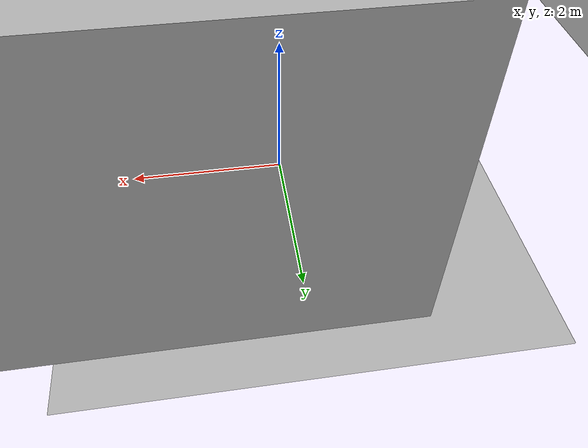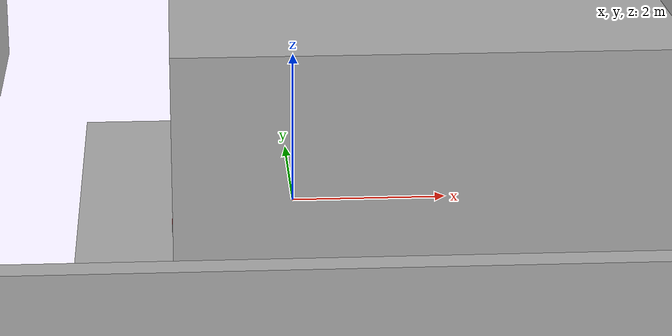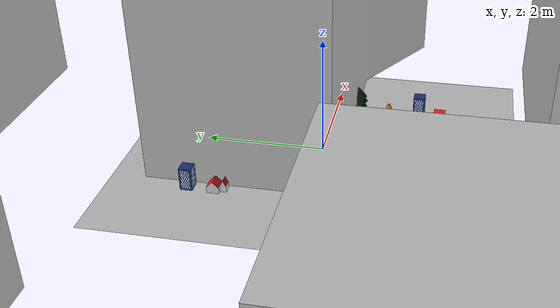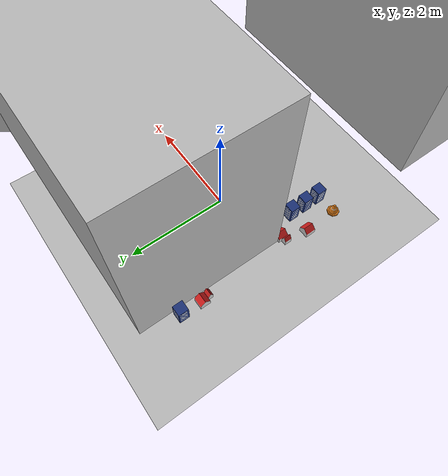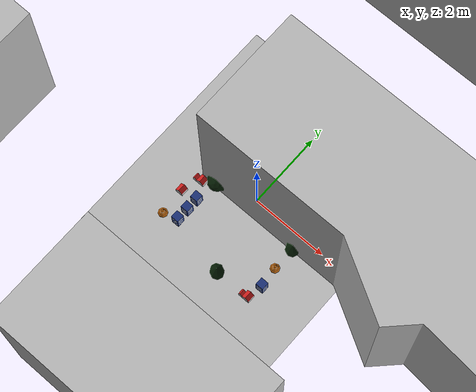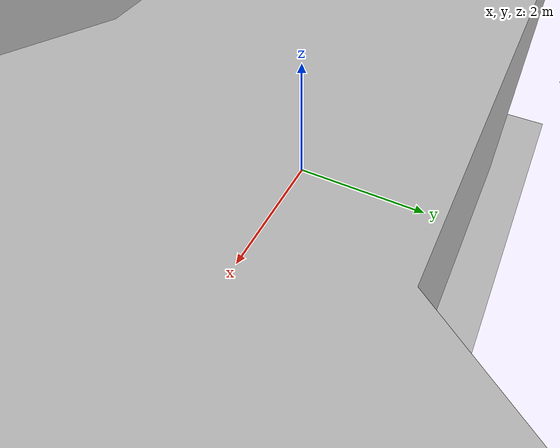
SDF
<?xml version="1.0"?>

<sdf version="1.6">
  <world name="yahboom_track_world">
    <physics name="1ms" type="ignored">
      <max_step_size>0.001</max_step_size>
      <real_time_factor>1.0</real_time_factor>
    </physics>

    <plugin filename="ignition-gazebo-contact-system" name="gz::sim::systems::Contact" />
    <plugin filename="ignition-gazebo-imu-system" name="gz::sim::systems::Imu" />
    <plugin filename="ignition-gazebo-physics-system" name="gz::sim::systems::Physics" />
    <plugin filename="ignition-gazebo-scene-broadcaster-system"
      name="gz::sim::systems::SceneBroadcaster" />
    <plugin filename="ignition-gazebo-sensors-system" name="gz::sim::systems::Sensors" />
    <plugin filename="ignition-gazebo-user-commands-system" name="gz::sim::systems::UserCommands" />

    <spherical_coordinates>
      <surface_model>EARTH_WGS84</surface_model>
      <world_frame_orientation>ENU</world_frame_orientation>
      <latitude_deg>50.088384</latitude_deg>
      <longitude_deg>19.939128</longitude_deg>
      <elevation>0</elevation>
      <heading_deg>0</heading_deg>
    </spherical_coordinates>

    <include>
      <uri>model://YahboomTrack/TrackMap</uri>
      <pose>0 0 0 0 0 0</pose>
    </include>
    <include>
      <uri>model://YahboomTrack/Walls</uri>
      <pose>0 0 0 0 0 0</pose>
    </include>
    <include>
      <uri>model://YahboomTrack/DecoAll</uri>
      <pose>0 0 0 0 0 0</pose>
    </include>
    <!-- INSERT SIGNS -->

    <model name="light">
      <static>true</static>
      <link name="map">
        <light type="directional" name="sun">
          <cast_shadows>true</cast_shadows>
          <pose>0 0 10 0 0 0</pose>
          <diffuse>0.8 0.8 0.8 1</diffuse>
          <specular>0.2 0.2 0.2 1</specular>
          <attenuation>
            <range>1000</range>
            <constant>0.9</constant>
            <linear>0.01</linear>
            <quadratic>0.001</quadratic>
          </attenuation>
          <direction>0.0 0.0 0.0</direction>
        </light>
        <collision name="collision">
          <geometry>
            <plane>
              <normal>0 0 1</normal>
              <size>11 11</size>
            </plane>
          </geometry>
        </collision>
      </link>
    </model>
  </world>
</sdf>

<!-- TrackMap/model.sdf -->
<sdf version="1.8">
  <model name="TrackMap">
    <static>true</static>
    <link name="TrackMap">
      <visual name="visual">
        <geometry>
          <mesh>
            <uri>model://YahboomTrack/TrackMap/meshes/TrackMap.dae</uri>
            <scale>2.0 2.0 2.0</scale>
          </mesh>
        </geometry>
      </visual>
      <collision name="visual">
        <geometry>
          <mesh>
            <uri>model://YahboomTrack/TrackMap/meshes/TrackMap.dae</uri>
            <scale>2.0 2.0 2.0</scale>
          </mesh>
        </geometry>
      </collision>
    </link>
  </model>
</sdf>

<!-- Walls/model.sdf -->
<sdf version="1.8">
  <model name="Walls">
    <static>true</static>
    <link name="Walls">
      <visual name="visual">
        <geometry>
          <mesh>
            <uri>model://YahboomTrack/Walls/meshes/Walls.dae</uri>
            <scale>2.0 2.0 2.0</scale>
          </mesh>
        </geometry>
      </visual>
      <collision name="visual">
        <geometry>
          <mesh>
            <uri>model://YahboomTrack/Walls/meshes/Walls.dae</uri>
            <scale>2.0 2.0 2.0</scale>
          </mesh>
        </geometry>
      </collision>
    </link>
  </model>
</sdf>

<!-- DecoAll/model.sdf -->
<sdf version="1.8">
  <model name="DecoAll">
    <static>true</static>
    <link name="DecoAll">
      <visual name="visual">
        <geometry>
          <mesh>
            <uri>model://YahboomTrack/DecoAll/meshes/DecoAll.dae</uri>
            <scale>2.0 2.0 2.0</scale>
          </mesh>
        </geometry>
      </visual>
      <collision name="visual">
        <geometry>
          <mesh>
            <uri>model://YahboomTrack/DecoAll/meshes/DecoAll.dae</uri>
            <scale>2.0 2.0 2.0</scale>
          </mesh>
        </geometry>
      </collision>
    </link>
  </model>
</sdf>
